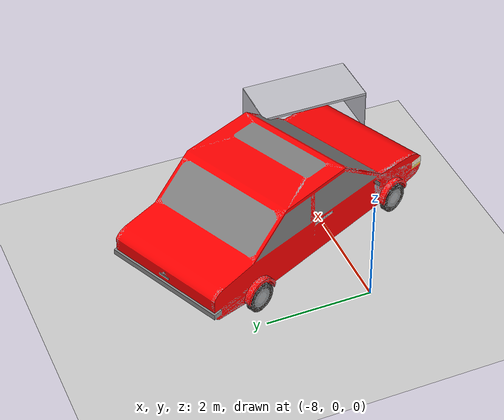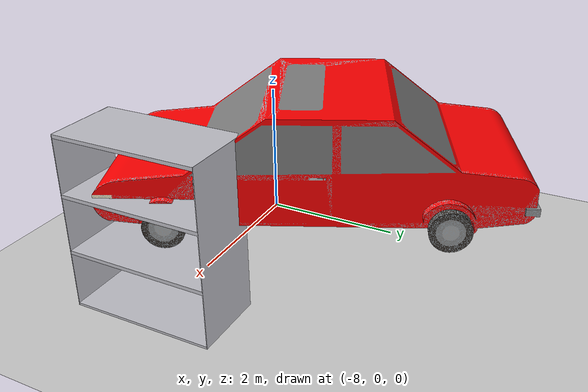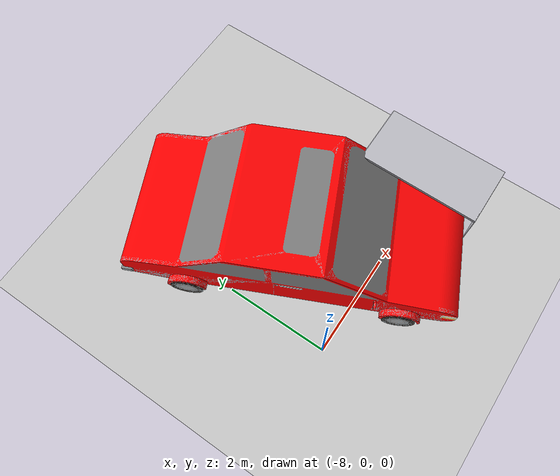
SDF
<sdf version="1.6">
 <world name="default">
  <light name="sun" type="directional">
   <pose>0 0 10 0 -0 0</pose>
   <diffuse>0.8 0.8 0.8 1</diffuse>
   <specular>0.1 0.1 0.1 1</specular>
   <attenuation>
    <range>1000</range>
    <constant>0.9</constant>
    <linear>0.01</linear>
    <quadratic>0.001</quadratic>
   </attenuation>
   <direction>-0.5 0.5 -1</direction>
  </light>
  <model name="ground_plane">
   <static>1</static>
   <link name="link">
    <collision name="collision">
     <geometry><plane><normal>0 0 1</normal><size>100 100</size></plane></geometry>
     <surface><friction><ode><mu>100</mu><mu2>50</mu2></ode></friction></surface>
    </collision>
    <visual name="visual">
     <cast_shadows>0</cast_shadows>
     <geometry><plane><normal>0 0 1</normal><size>100 100</size></plane></geometry>
     <material>
      <script><uri>file://media/materials/scripts/gazebo.material</uri><name>Gazebo/Grey</name></script>
     </material>
    </visual>
   </link>
  </model>
  <gravity>0 0 -9.8</gravity>
  <magnetic_field>6e-06 2.3e-05 -4.2e-05</magnetic_field>
  <atmosphere type="adiabatic"/>
  <physics name="default_physics" default="0" type="ode">
   <max_step_size>0.001</max_step_size>
   <real_time_factor>1</real_time_factor>
   <real_time_update_rate>1000</real_time_update_rate>
  </physics>
  <scene><ambient>0.4 0.4 0.4 1</ambient><background>0.7 0.7 0.7 1</background><shadows>0</shadows></scene>
  <spherical_coordinates>
   <surface_model>EARTH_WGS84</surface_model>
   <latitude_deg>0</latitude_deg>
   <longitude_deg>0</longitude_deg>
   <elevation>0</elevation>
   <heading_deg>0</heading_deg>
  </spherical_coordinates>
  <include><uri>model://3-shelf</uri><pose>-5 0 0 0 0 1.57</pose></include>
  <include><uri>model://car</uri><pose>-4.6 -0.6 0.815 0 0 2.0</pose></include>
 </world>
</sdf>

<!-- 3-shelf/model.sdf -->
<sdf version="1.5">
  <model name="3-shalf">
    <static>true</static>
    <link name="link">
      <collision name="shalf1">
        <pose>0 0 0 0 0 0</pose>
        <geometry>
          <box>
            <size>2 1 0.05</size>
          </box>
        </geometry>
        <surface>
          <friction>
            <ode>
              <mu>0.6</mu>
              <mu2>0.6</mu2>
            </ode>
          </friction>
        </surface>
      </collision>
      <visual name="shalf1_visual">
        <pose>0 0 0 0 0 0</pose>
        <geometry>
          <box>
            <size>2 1 0.05</size>
          </box>
        </geometry>
        <material>
          <script>
            <uri>file://media/materials/scripts/gazebo.material</uri>
            <name>Gazebo/Silver</name>
          </script>
        </material>
      </visual>
      <collision name="shalf2">
        <pose>0 0 0.8 0 0 0</pose>
        <geometry>
          <box>
            <size>2 1 0.05</size>
          </box>
        </geometry>
        <surface>
          <friction>
            <ode>
              <mu>0.6</mu>
              <mu2>0.6</mu2>
            </ode>
          </friction>
        </surface>
      </collision>
      <visual name="shalf2_visual">
        <pose>0 0 0.8 0 0 0</pose>
        <geometry>
          <box>
            <size>2 1 0.05</size>
          </box>
        </geometry>
        <material>
          <script>
            <uri>file://media/materials/scripts/gazebo.material</uri>
            <name>Gazebo/Silver</name>
          </script>
        </material>
      </visual>
      <collision name="shalf3">
        <pose>0 0 1.6 0 0 0</pose>
        <geometry>
          <box>
            <size>2 1 0.05</size>
          </box>
        </geometry>
        <surface>
          <friction>
            <ode>
              <mu>0.6</mu>
              <mu2>0.6</mu2>
            </ode>
          </friction>
        </surface>
      </collision>
      <visual name="shalf3_visual">
        <pose>0 0 1.6 0 0 0</pose>
        <geometry>
          <box>
            <size>2 1 0.05</size>
          </box>
        </geometry>
        <material>
          <script>
            <uri>file://media/materials/scripts/gazebo.material</uri>
            <name>Gazebo/Silver</name>
          </script>
        </material>
      </visual>
      <collision name="shalf4">
        <pose>0 0 2.4 0 0 0</pose>
        <geometry>
          <box>
            <size>2 1 0.05</size>
          </box>
        </geometry>
        <surface>
          <friction>
            <ode>
              <mu>0.6</mu>
              <mu2>0.6</mu2>
            </ode>
          </friction>
        </surface>
      </collision>
      <visual name="shalf4_visual">
        <pose>0 0 2.4 0 0 0</pose>
        <geometry>
          <box>
            <size>2 1 0.05</size>
          </box>
        </geometry>
        <material>
          <script>
            <uri>file://media/materials/scripts/gazebo.material</uri>
            <name>Gazebo/Silver</name>
          </script>
        </material>
      </visual>
      <collision name="shafl_leg1">
        <pose>-1 0 1.2 0 0 1.57</pose>
        <geometry>
          <box>
            <size>1 0.01 2.45</size>
          </box>
        </geometry>
        <surface>
          <friction>
            <ode>
              <mu>0.6</mu>
              <mu2>0.6</mu2>
            </ode>
          </friction>
        </surface>
      </collision>
      <visual name="shafl_leg1_visual">
        <pose>-1 0 1.2 0 0 1.57</pose>
        <geometry>
          <box>
            <size>1 0.01 2.45</size>
          </box>
        </geometry>
        <material>
          <script>
            <uri>file://media/materials/scripts/gazebo.material</uri>
            <name>Gazebo/Silver</name>
          </script>
        </material>
      </visual>
      <collision name="shafl_leg2">
        <pose>1 0 1.2 0 0 1.57</pose>
        <geometry>
          <box>
            <size>1 0.01 2.45</size>
          </box>
        </geometry>
        <surface>
          <friction>
            <ode>
              <mu>0.6</mu>
              <mu2>0.6</mu2>
            </ode>
          </friction>
        </surface>
      </collision>
      <visual name="shafl_leg2_visual">
        <pose>1 0 1.2 0 0 1.57</pose>
        <geometry>
          <box>
            <size>1 0.01 2.45</size>
          </box>
        </geometry>
        <material>
          <script>
            <uri>file://media/materials/scripts/gazebo.material</uri>
            <name>Gazebo/Silver</name>
          </script>
        </material>
      </visual>

    </link>
  </model>
</sdf>

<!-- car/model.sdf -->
<sdf version="1.6">
  <model name="car">
    <static>true</static>
    <link name="link">
      <collision name="collision">
        <geometry>
          <mesh>
            <scale>1 1 1</scale>

            <uri>model://car/meshes/model.dae</uri>
          </mesh>
        </geometry>
      </collision>
      <visual name="visual">
        <geometry>
          <mesh>
            <scale>1 1 1</scale>

            <uri>model://car/meshes/model.dae</uri>
          </mesh>
        </geometry>
      </visual>
    </link>
  </model>
</sdf>
